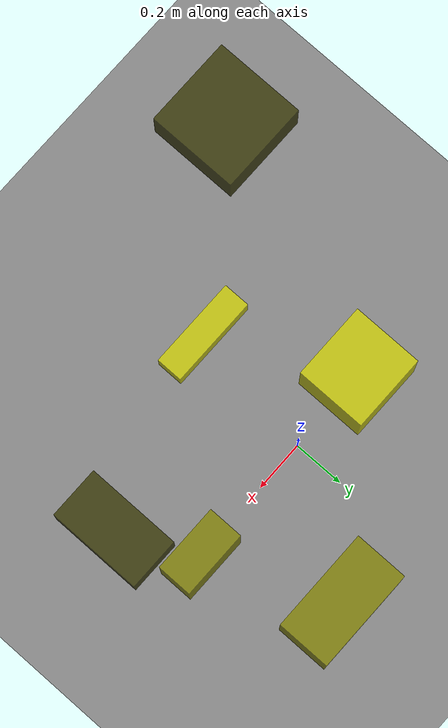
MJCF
<?xml version="1.0"?>
<mujoco model="obstacle_scene">
  <compiler angle="radian" coordinate="local"/>
  <option timestep="0.001" gravity="0 0 -9.81"/>

  <asset>
    <material name="obstacle_mat" rgba="0.8 0.8 0.0 0.8"/>
    <material name="ground_mat" rgba="0.5 0.5 0.5 1"/>
  </asset>

  <worldbody>
    <!-- Ground plane -->
    <geom name="ground" type="plane" size="3 3 0.1" material="ground_mat"/>

    <!-- Obstacles -->
    <body name="obstacle_0" pos="-0.552733 -0.825769 0.852042">
      <geom name="obs_0" type="box" size="0.167056 0.167946 0.080636" rgba="0.2 0.2 0.0 0.8"/>
    </body>
    <body name="obstacle_1" pos="0.419093 0.504060 1.205833">
      <geom name="obs_1" type="box" size="0.177960 0.092219 0.114546" rgba="0.5 0.5 0.0 0.8"/>
    </body>
    <body name="obstacle_2" pos="-0.061174 -0.501352 0.133368">
      <geom name="obs_2" type="box" size="0.178280 0.052181 0.048422" rgba="0.8 0.8 0.0 0.8"/>
    </body>
    <body name="obstacle_3" pos="0.674456 -0.240650 0.423893">
      <geom name="obs_3" type="box" size="0.099348 0.180921 0.072836" rgba="0.2 0.2 0.0 0.8"/>
    </body>
    <body name="obstacle_4" pos="0.586178 0.079718 1.109967">
      <geom name="obs_4" type="box" size="0.118071 0.061084 0.113702" rgba="0.5 0.5 0.0 0.8"/>
    </body>
    <body name="obstacle_5" pos="-0.251522 0.027721 0.570764">
      <geom name="obs_5" type="box" size="0.143550 0.132674 0.112118" rgba="0.8 0.8 0.0 0.8"/>
    </body>
  </worldbody>
</mujoco>
